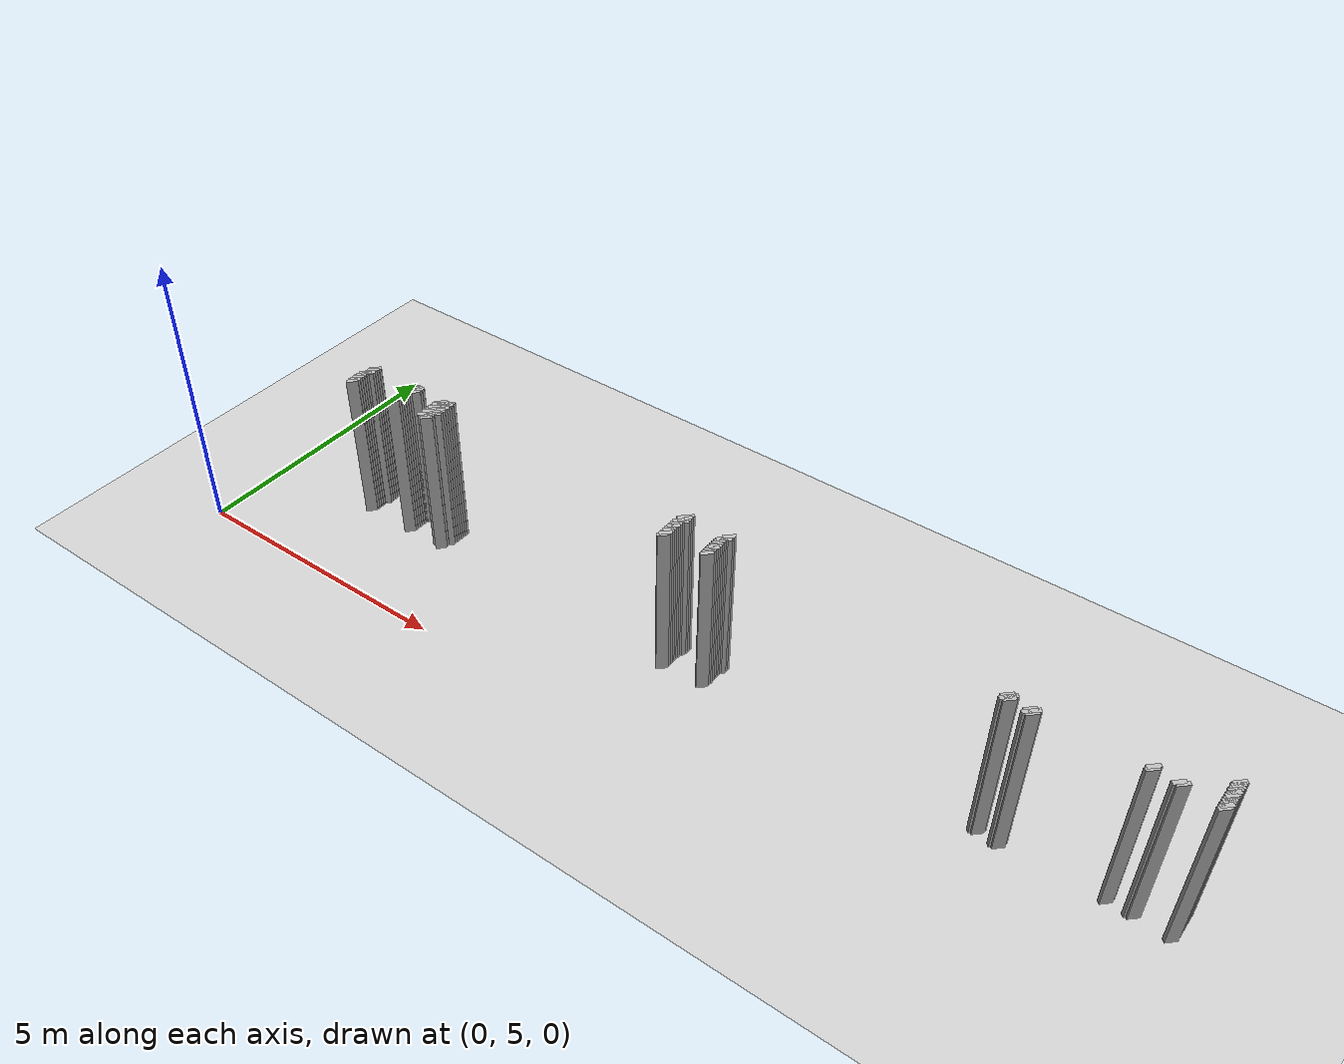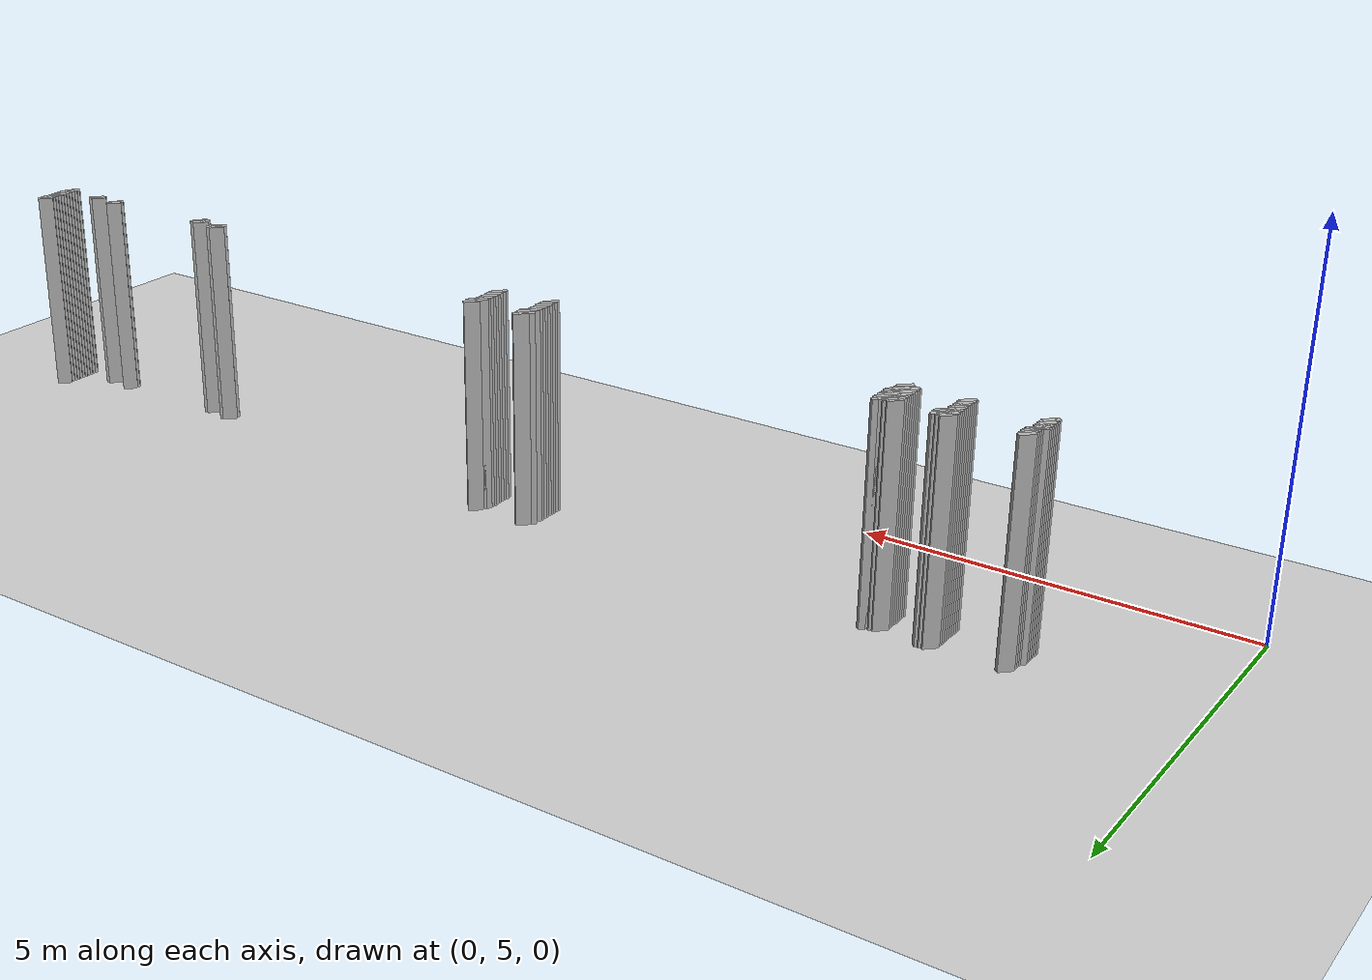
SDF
<sdf version="1.5">
 <world name="default">
  <include><uri>model://ground_plane</uri></include>
  <include><uri>model://sun</uri></include>
  <model name="grey_wall_2332">
   <static>1</static>
   <link name="link">
    <pose>8.65 7.25  1.4 0 0 -0.7853981633974483</pose>
    <collision name="collision">
     <geometry><box><size>0.07071067811865576 .2  2.8</size></box></geometry>
    </collision>
    <visual name="visual">
     <cast_shadows>0</cast_shadows>
     <geometry><box><size>0.07071067811865576 .2  2.8</size></box></geometry>
    </visual>
   </link>
  </model>
  <model name="grey_wall_2333">
   <static>1</static>
   <link name="link">
    <pose>9.4 7.25  1.4 0 0 -0.7853981633974483</pose>
    <collision name="collision">
     <geometry><box><size>0.07071067811865576 .2  2.8</size></box></geometry>
    </collision>
    <visual name="visual">
     <cast_shadows>0</cast_shadows>
     <geometry><box><size>0.07071067811865576 .2  2.8</size></box></geometry>
    </visual>
   </link>
  </model>
  <model name="grey_wall_2334">
   <static>1</static>
   <link name="link">
    <pose>17.05 7.25  1.4 0 0 -0.7853981633974838</pose>
    <collision name="collision">
     <geometry><box><size>0.07071067811865325 .2  2.8</size></box></geometry>
    </collision>
    <visual name="visual">
     <cast_shadows>0</cast_shadows>
     <geometry><box><size>0.07071067811865325 .2  2.8</size></box></geometry>
    </visual>
   </link>
  </model>
  <model name="grey_wall_2335">
   <static>1</static>
   <link name="link">
    <pose>2.15 7.2  1.4 0 0 -0.7853981633974572</pose>
    <collision name="collision">
     <geometry><box><size>0.07071067811865513 .2  2.8</size></box></geometry>
    </collision>
    <visual name="visual">
     <cast_shadows>0</cast_shadows>
     <geometry><box><size>0.07071067811865513 .2  2.8</size></box></geometry>
    </visual>
   </link>
  </model>
  <model name="grey_wall_2336">
   <static>1</static>
   <link name="link">
    <pose>3.0500000000000003 7.2  1.4 0 0 -0.7853981633974572</pose>
    <collision name="collision">
     <geometry><box><size>0.07071067811865513 .2  2.8</size></box></geometry>
    </collision>
    <visual name="visual">
     <cast_shadows>0</cast_shadows>
     <geometry><box><size>0.07071067811865513 .2  2.8</size></box></geometry>
    </visual>
   </link>
  </model>
  <model name="grey_wall_2337">
   <static>1</static>
   <link name="link">
    <pose>3.1 7.2  1.4 0 0 -0.7853981633974572</pose>
    <collision name="collision">
     <geometry><box><size>0.07071067811865513 .2  2.8</size></box></geometry>
    </collision>
    <visual name="visual">
     <cast_shadows>0</cast_shadows>
     <geometry><box><size>0.07071067811865513 .2  2.8</size></box></geometry>
    </visual>
   </link>
  </model>
  <model name="grey_wall_2338">
   <static>1</static>
   <link name="link">
    <pose>3.1500000000000004 7.2  1.4 0 0 -0.7853981633974572</pose>
    <collision name="collision">
     <geometry><box><size>0.07071067811865513 .2  2.8</size></box></geometry>
    </collision>
    <visual name="visual">
     <cast_shadows>0</cast_shadows>
     <geometry><box><size>0.07071067811865513 .2  2.8</size></box></geometry>
    </visual>
   </link>
  </model>
  <model name="grey_wall_2339">
   <static>1</static>
   <link name="link">
    <pose>3.85 7.2  1.4 0 0 -0.7853981633974572</pose>
    <collision name="collision">
     <geometry><box><size>0.07071067811865513 .2  2.8</size></box></geometry>
    </collision>
    <visual name="visual">
     <cast_shadows>0</cast_shadows>
     <geometry><box><size>0.07071067811865513 .2  2.8</size></box></geometry>
    </visual>
   </link>
  </model>
  <model name="grey_wall_2340">
   <static>1</static>
   <link name="link">
    <pose>8.6 7.2  1.4 0 0 -0.7853981633974483</pose>
    <collision name="collision">
     <geometry><box><size>0.07071067811865576 .2  2.8</size></box></geometry>
    </collision>
    <visual name="visual">
     <cast_shadows>0</cast_shadows>
     <geometry><box><size>0.07071067811865576 .2  2.8</size></box></geometry>
    </visual>
   </link>
  </model>
  <model name="grey_wall_2341">
   <static>1</static>
   <link name="link">
    <pose>8.65 7.2  1.4 0 0 -0.7853981633974483</pose>
    <collision name="collision">
     <geometry><box><size>0.07071067811865576 .2  2.8</size></box></geometry>
    </collision>
    <visual name="visual">
     <cast_shadows>0</cast_shadows>
     <geometry><box><size>0.07071067811865576 .2  2.8</size></box></geometry>
    </visual>
   </link>
  </model>
  <model name="grey_wall_2342">
   <static>1</static>
   <link name="link">
    <pose>9.4 7.2  1.4 0 0 -0.7853981633974483</pose>
    <collision name="collision">
     <geometry><box><size>0.07071067811865576 .2  2.8</size></box></geometry>
    </collision>
    <visual name="visual">
     <cast_shadows>0</cast_shadows>
     <geometry><box><size>0.07071067811865576 .2  2.8</size></box></geometry>
    </visual>
   </link>
  </model>
  <model name="grey_wall_2343">
   <static>1</static>
   <link name="link">
    <pose>17.05 7.2  1.4 0 0 -0.7853981633974838</pose>
    <collision name="collision">
     <geometry><box><size>0.07071067811865325 .2  2.8</size></box></geometry>
    </collision>
    <visual name="visual">
     <cast_shadows>0</cast_shadows>
     <geometry><box><size>0.07071067811865325 .2  2.8</size></box></geometry>
    </visual>
   </link>
  </model>
  <model name="grey_wall_2344">
   <static>1</static>
   <link name="link">
    <pose>2.15 7.15  1.4 0 0 -0.7853981633974572</pose>
    <collision name="collision">
     <geometry><box><size>0.07071067811865513 .2  2.8</size></box></geometry>
    </collision>
    <visual name="visual">
     <cast_shadows>0</cast_shadows>
     <geometry><box><size>0.07071067811865513 .2  2.8</size></box></geometry>
    </visual>
   </link>
  </model>
  <model name="grey_wall_2345">
   <static>1</static>
   <link name="link">
    <pose>3.0500000000000003 7.15  1.4 0 0 -0.7853981633974572</pose>
    <collision name="collision">
     <geometry><box><size>0.07071067811865513 .2  2.8</size></box></geometry>
    </collision>
    <visual name="visual">
     <cast_shadows>0</cast_shadows>
     <geometry><box><size>0.07071067811865513 .2  2.8</size></box></geometry>
    </visual>
   </link>
  </model>
  <model name="grey_wall_2346">
   <static>1</static>
   <link name="link">
    <pose>3.1500000000000004 7.15  1.4 0 0 -0.7853981633974572</pose>
    <collision name="collision">
     <geometry><box><size>0.07071067811865513 .2  2.8</size></box></geometry>
    </collision>
    <visual name="visual">
     <cast_shadows>0</cast_shadows>
     <geometry><box><size>0.07071067811865513 .2  2.8</size></box></geometry>
    </visual>
   </link>
  </model>
  <model name="grey_wall_2347">
   <static>1</static>
   <link name="link">
    <pose>3.7 7.15  1.4 0 0 -0.7853981633974572</pose>
    <collision name="collision">
     <geometry><box><size>0.07071067811865513 .2  2.8</size></box></geometry>
    </collision>
    <visual name="visual">
     <cast_shadows>0</cast_shadows>
     <geometry><box><size>0.07071067811865513 .2  2.8</size></box></geometry>
    </visual>
   </link>
  </model>
  <model name="grey_wall_2348">
   <static>1</static>
   <link name="link">
    <pose>3.75 7.15  1.4 0 0 -0.7853981633974572</pose>
    <collision name="collision">
     <geometry><box><size>0.07071067811865513 .2  2.8</size></box></geometry>
    </collision>
    <visual name="visual">
     <cast_shadows>0</cast_shadows>
     <geometry><box><size>0.07071067811865513 .2  2.8</size></box></geometry>
    </visual>
   </link>
  </model>
  <model name="grey_wall_2349">
   <static>1</static>
   <link name="link">
    <pose>3.8000000000000003 7.15  1.4 0 0 -0.7853981633974572</pose>
    <collision name="collision">
     <geometry><box><size>0.07071067811865513 .2  2.8</size></box></geometry>
    </collision>
    <visual name="visual">
     <cast_shadows>0</cast_shadows>
     <geometry><box><size>0.07071067811865513 .2  2.8</size></box></geometry>
    </visual>
   </link>
  </model>
  <model name="grey_wall_2350">
   <static>1</static>
   <link name="link">
    <pose>3.85 7.15  1.4 0 0 -0.7853981633974572</pose>
    <collision name="collision">
     <geometry><box><size>0.07071067811865513 .2  2.8</size></box></geometry>
    </collision>
    <visual name="visual">
     <cast_shadows>0</cast_shadows>
     <geometry><box><size>0.07071067811865513 .2  2.8</size></box></geometry>
    </visual>
   </link>
  </model>
  <model name="grey_wall_2351">
   <static>1</static>
   <link name="link">
    <pose>8.65 7.15  1.4 0 0 -0.7853981633974483</pose>
    <collision name="collision">
     <geometry><box><size>0.07071067811865576 .2  2.8</size></box></geometry>
    </collision>
    <visual name="visual">
     <cast_shadows>0</cast_shadows>
     <geometry><box><size>0.07071067811865576 .2  2.8</size></box></geometry>
    </visual>
   </link>
  </model>
  <model name="grey_wall_2352">
   <static>1</static>
   <link name="link">
    <pose>9.35 7.15  1.4 0 0 -0.7853981633974483</pose>
    <collision name="collision">
     <geometry><box><size>0.07071067811865576 .2  2.8</size></box></geometry>
    </collision>
    <visual name="visual">
     <cast_shadows>0</cast_shadows>
     <geometry><box><size>0.07071067811865576 .2  2.8</size></box></geometry>
    </visual>
   </link>
  </model>
  <model name="grey_wall_2353">
   <static>1</static>
   <link name="link">
    <pose>9.4 7.15  1.4 0 0 -0.7853981633974483</pose>
    <collision name="collision">
     <geometry><box><size>0.07071067811865576 .2  2.8</size></box></geometry>
    </collision>
    <visual name="visual">
     <cast_shadows>0</cast_shadows>
     <geometry><box><size>0.07071067811865576 .2  2.8</size></box></geometry>
    </visual>
   </link>
  </model>
  <model name="grey_wall_2354">
   <static>1</static>
   <link name="link">
    <pose>17.05 7.15  1.4 0 0 -0.7853981633974838</pose>
    <collision name="collision">
     <geometry><box><size>0.07071067811865325 .2  2.8</size></box></geometry>
    </collision>
    <visual name="visual">
     <cast_shadows>0</cast_shadows>
     <geometry><box><size>0.07071067811865325 .2  2.8</size></box></geometry>
    </visual>
   </link>
  </model>
  <model name="grey_wall_2355">
   <static>1</static>
   <link name="link">
    <pose>2.15 7.1000000000000005  1.4 0 0 -0.7853981633974572</pose>
    <collision name="collision">
     <geometry><box><size>0.07071067811865513 .2  2.8</size></box></geometry>
    </collision>
    <visual name="visual">
     <cast_shadows>0</cast_shadows>
     <geometry><box><size>0.07071067811865513 .2  2.8</size></box></geometry>
    </visual>
   </link>
  </model>
  <model name="grey_wall_2356">
   <static>1</static>
   <link name="link">
    <pose>3.0500000000000003 7.1000000000000005  1.4 0 0 -0.7853981633974572</pose>
    <collision name="collision">
     <geometry><box><size>0.07071067811865513 .2  2.8</size></box></geometry>
    </collision>
    <visual name="visual">
     <cast_shadows>0</cast_shadows>
     <geometry><box><size>0.07071067811865513 .2  2.8</size></box></geometry>
    </visual>
   </link>
  </model>
  <model name="grey_wall_2357">
   <static>1</static>
   <link name="link">
    <pose>3.1 7.1000000000000005  1.4 0 0 -0.7853981633974572</pose>
    <collision name="collision">
     <geometry><box><size>0.07071067811865513 .2  2.8</size></box></geometry>
    </collision>
    <visual name="visual">
     <cast_shadows>0</cast_shadows>
     <geometry><box><size>0.07071067811865513 .2  2.8</size></box></geometry>
    </visual>
   </link>
  </model>
  <model name="grey_wall_2358">
   <static>1</static>
   <link name="link">
    <pose>3.1500000000000004 7.1000000000000005  1.4 0 0 -0.7853981633974572</pose>
    <collision name="collision">
     <geometry><box><size>0.07071067811865513 .2  2.8</size></box></geometry>
    </collision>
    <visual name="visual">
     <cast_shadows>0</cast_shadows>
     <geometry><box><size>0.07071067811865513 .2  2.8</size></box></geometry>
    </visual>
   </link>
  </model>
  <model name="grey_wall_2359">
   <static>1</static>
   <link name="link">
    <pose>3.7 7.1000000000000005  1.4 0 0 -0.7853981633974572</pose>
    <collision name="collision">
     <geometry><box><size>0.07071067811865513 .2  2.8</size></box></geometry>
    </collision>
    <visual name="visual">
     <cast_shadows>0</cast_shadows>
     <geometry><box><size>0.07071067811865513 .2  2.8</size></box></geometry>
    </visual>
   </link>
  </model>
  <model name="grey_wall_2360">
   <static>1</static>
   <link name="link">
    <pose>3.8000000000000003 7.1000000000000005  1.4 0 0 -0.7853981633974572</pose>
    <collision name="collision">
     <geometry><box><size>0.07071067811865513 .2  2.8</size></box></geometry>
    </collision>
    <visual name="visual">
     <cast_shadows>0</cast_shadows>
     <geometry><box><size>0.07071067811865513 .2  2.8</size></box></geometry>
    </visual>
   </link>
  </model>
  <model name="grey_wall_2361">
   <static>1</static>
   <link name="link">
    <pose>3.85 7.1000000000000005  1.4 0 0 -0.7853981633974572</pose>
    <collision name="collision">
     <geometry><box><size>0.07071067811865513 .2  2.8</size></box></geometry>
    </collision>
    <visual name="visual">
     <cast_shadows>0</cast_shadows>
     <geometry><box><size>0.07071067811865513 .2  2.8</size></box></geometry>
    </visual>
   </link>
  </model>
  <model name="grey_wall_2362">
   <static>1</static>
   <link name="link">
    <pose>8.6 7.1000000000000005  1.4 0 0 -0.7853981633974483</pose>
    <collision name="collision">
     <geometry><box><size>0.07071067811865576 .2  2.8</size></box></geometry>
    </collision>
    <visual name="visual">
     <cast_shadows>0</cast_shadows>
     <geometry><box><size>0.07071067811865576 .2  2.8</size></box></geometry>
    </visual>
   </link>
  </model>
  <model name="grey_wall_2363">
   <static>1</static>
   <link name="link">
    <pose>8.65 7.1000000000000005  1.4 0 0 -0.7853981633974483</pose>
    <collision name="collision">
     <geometry><box><size>0.07071067811865576 .2  2.8</size></box></geometry>
    </collision>
    <visual name="visual">
     <cast_shadows>0</cast_shadows>
     <geometry><box><size>0.07071067811865576 .2  2.8</size></box></geometry>
    </visual>
   </link>
  </model>
  <model name="grey_wall_2364">
   <static>1</static>
   <link name="link">
    <pose>9.35 7.1000000000000005  1.4 0 0 -0.7853981633974483</pose>
    <collision name="collision">
     <geometry><box><size>0.07071067811865576 .2  2.8</size></box></geometry>
    </collision>
    <visual name="visual">
     <cast_shadows>0</cast_shadows>
     <geometry><box><size>0.07071067811865576 .2  2.8</size></box></geometry>
    </visual>
   </link>
  </model>
  <model name="grey_wall_2365">
   <static>1</static>
   <link name="link">
    <pose>17.05 7.1000000000000005  1.4 0 0 -0.7853981633974838</pose>
    <collision name="collision">
     <geometry><box><size>0.07071067811865325 .2  2.8</size></box></geometry>
    </collision>
    <visual name="visual">
     <cast_shadows>0</cast_shadows>
     <geometry><box><size>0.07071067811865325 .2  2.8</size></box></geometry>
    </visual>
   </link>
  </model>
  <model name="grey_wall_2366">
   <static>1</static>
   <link name="link">
    <pose>2.15 7.050000000000001  1.4 0 0 -0.7853981633974572</pose>
    <collision name="collision">
     <geometry><box><size>0.07071067811865513 .2  2.8</size></box></geometry>
    </collision>
    <visual name="visual">
     <cast_shadows>0</cast_shadows>
     <geometry><box><size>0.07071067811865513 .2  2.8</size></box></geometry>
    </visual>
   </link>
  </model>
  <model name="grey_wall_2367">
   <static>1</static>
   <link name="link">
    <pose>3.0500000000000003 7.050000000000001  1.4 0 0 -0.7853981633974572</pose>
    <collision name="collision">
     <geometry><box><size>0.07071067811865513 .2  2.8</size></box></geometry>
    </collision>
    <visual name="visual">
     <cast_shadows>0</cast_shadows>
     <geometry><box><size>0.07071067811865513 .2  2.8</size></box></geometry>
    </visual>
   </link>
  </model>
  <model name="grey_wall_2368">
   <static>1</static>
   <link name="link">
    <pose>3.7 7.050000000000001  1.4 0 0 -0.7853981633974572</pose>
    <collision name="collision">
     <geometry><box><size>0.07071067811865513 .2  2.8</size></box></geometry>
    </collision>
    <visual name="visual">
     <cast_shadows>0</cast_shadows>
     <geometry><box><size>0.07071067811865513 .2  2.8</size></box></geometry>
    </visual>
   </link>
  </model>
  <model name="grey_wall_2369">
   <static>1</static>
   <link name="link">
    <pose>3.8000000000000003 7.050000000000001  1.4 0 0 -0.7853981633974572</pose>
    <collision name="collision">
     <geometry><box><size>0.07071067811865513 .2  2.8</size></box></geometry>
    </collision>
    <visual name="visual">
     <cast_shadows>0</cast_shadows>
     <geometry><box><size>0.07071067811865513 .2  2.8</size></box></geometry>
    </visual>
   </link>
  </model>
  <model name="grey_wall_2370">
   <static>1</static>
   <link name="link">
    <pose>3.85 7.050000000000001  1.4 0 0 -0.7853981633974572</pose>
    <collision name="collision">
     <geometry><box><size>0.07071067811865513 .2  2.8</size></box></geometry>
    </collision>
    <visual name="visual">
     <cast_shadows>0</cast_shadows>
     <geometry><box><size>0.07071067811865513 .2  2.8</size></box></geometry>
    </visual>
   </link>
  </model>
  <model name="grey_wall_2371">
   <static>1</static>
   <link name="link">
    <pose>8.6 7.050000000000001  1.4 0 0 -0.7853981633974483</pose>
    <collision name="collision">
     <geometry><box><size>0.07071067811865576 .2  2.8</size></box></geometry>
    </collision>
    <visual name="visual">
     <cast_shadows>0</cast_shadows>
     <geometry><box><size>0.07071067811865576 .2  2.8</size></box></geometry>
    </visual>
   </link>
  </model>
  <model name="grey_wall_2372">
   <static>1</static>
   <link name="link">
    <pose>9.35 7.050000000000001  1.4 0 0 -0.7853981633974483</pose>
    <collision name="collision">
     <geometry><box><size>0.07071067811865576 .2  2.8</size></box></geometry>
    </collision>
    <visual name="visual">
     <cast_shadows>0</cast_shadows>
     <geometry><box><size>0.07071067811865576 .2  2.8</size></box></geometry>
    </visual>
   </link>
  </model>
  <model name="grey_wall_2373">
   <static>1</static>
   <link name="link">
    <pose>17.05 7.050000000000001  1.4 0 0 -0.7853981633974838</pose>
    <collision name="collision">
     <geometry><box><size>0.07071067811865325 .2  2.8</size></box></geometry>
    </collision>
    <visual name="visual">
     <cast_shadows>0</cast_shadows>
     <geometry><box><size>0.07071067811865325 .2  2.8</size></box></geometry>
    </visual>
   </link>
  </model>
  <model name="grey_wall_2374">
   <static>1</static>
   <link name="link">
    <pose>2.1 7.0  1.4 0 0 -0.7853981633974572</pose>
    <collision name="collision">
     <geometry><box><size>0.07071067811865513 .2  2.8</size></box></geometry>
    </collision>
    <visual name="visual">
     <cast_shadows>0</cast_shadows>
     <geometry><box><size>0.07071067811865513 .2  2.8</size></box></geometry>
    </visual>
   </link>
  </model>
  <model name="grey_wall_2375">
   <static>1</static>
   <link name="link">
    <pose>2.15 7.0  1.4 0 0 -0.7853981633974572</pose>
    <collision name="collision">
     <geometry><box><size>0.07071067811865513 .2  2.8</size></box></geometry>
    </collision>
    <visual name="visual">
     <cast_shadows>0</cast_shadows>
     <geometry><box><size>0.07071067811865513 .2  2.8</size></box></geometry>
    </visual>
   </link>
  </model>
  <model name="grey_wall_2376">
   <static>1</static>
   <link name="link">
    <pose>3.0500000000000003 7.0  1.4 0 0 -0.7853981633974572</pose>
    <collision name="collision">
     <geometry><box><size>0.07071067811865513 .2  2.8</size></box></geometry>
    </collision>
    <visual name="visual">
     <cast_shadows>0</cast_shadows>
     <geometry><box><size>0.07071067811865513 .2  2.8</size></box></geometry>
    </visual>
   </link>
  </model>
  <model name="grey_wall_2377">
   <static>1</static>
   <link name="link">
    <pose>3.7 7.0  1.4 0 0 -0.7853981633974572</pose>
    <collision name="collision">
     <geometry><box><size>0.07071067811865513 .2  2.8</size></box></geometry>
    </collision>
    <visual name="visual">
     <cast_shadows>0</cast_shadows>
     <geometry><box><size>0.07071067811865513 .2  2.8</size></box></geometry>
    </visual>
   </link>
  </model>
  <model name="grey_wall_2378">
   <static>1</static>
   <link name="link">
    <pose>3.8000000000000003 7.0  1.4 0 0 -0.7853981633974572</pose>
    <collision name="collision">
     <geometry><box><size>0.07071067811865513 .2  2.8</size></box></geometry>
    </collision>
    <visual name="visual">
     <cast_shadows>0</cast_shadows>
     <geometry><box><size>0.07071067811865513 .2  2.8</size></box></geometry>
    </visual>
   </link>
  </model>
  <model name="grey_wall_2379">
   <static>1</static>
   <link name="link">
    <pose>3.85 7.0  1.4 0 0 -0.7853981633974572</pose>
    <collision name="collision">
     <geometry><box><size>0.07071067811865513 .2  2.8</size></box></geometry>
    </collision>
    <visual name="visual">
     <cast_shadows>0</cast_shadows>
     <geometry><box><size>0.07071067811865513 .2  2.8</size></box></geometry>
    </visual>
   </link>
  </model>
  <model name="grey_wall_2380">
   <static>1</static>
   <link name="link">
    <pose>8.6 7.0  1.4 0 0 -0.7853981633974483</pose>
    <collision name="collision">
     <geometry><box><size>0.07071067811865576 .2  2.8</size></box></geometry>
    </collision>
    <visual name="visual">
     <cast_shadows>0</cast_shadows>
     <geometry><box><size>0.07071067811865576 .2  2.8</size></box></geometry>
    </visual>
   </link>
  </model>
  <model name="grey_wall_2381">
   <static>1</static>
   <link name="link">
    <pose>9.35 7.0  1.4 0 0 -0.7853981633974483</pose>
    <collision name="collision">
     <geometry><box><size>0.07071067811865576 .2  2.8</size></box></geometry>
    </collision>
    <visual name="visual">
     <cast_shadows>0</cast_shadows>
     <geometry><box><size>0.07071067811865576 .2  2.8</size></box></geometry>
    </visual>
   </link>
  </model>
  <model name="grey_wall_2382">
   <static>1</static>
   <link name="link">
    <pose>17.05 7.0  1.4 0 0 -0.7853981633974838</pose>
    <collision name="collision">
     <geometry><box><size>0.07071067811865325 .2  2.8</size></box></geometry>
    </collision>
    <visual name="visual">
     <cast_shadows>0</cast_shadows>
     <geometry><box><size>0.07071067811865325 .2  2.8</size></box></geometry>
    </visual>
   </link>
  </model>
  <model name="grey_wall_2383">
   <static>1</static>
   <link name="link">
    <pose>2.1 6.95  1.4 0 0 -0.7853981633974572</pose>
    <collision name="collision">
     <geometry><box><size>0.07071067811865513 .2  2.8</size></box></geometry>
    </collision>
    <visual name="visual">
     <cast_shadows>0</cast_shadows>
     <geometry><box><size>0.07071067811865513 .2  2.8</size></box></geometry>
    </visual>
   </link>
  </model>
  <model name="grey_wall_2384">
   <static>1</static>
   <link name="link">
    <pose>3.0500000000000003 6.95  1.4 0 0 -0.7853981633974572</pose>
    <collision name="collision">
     <geometry><box><size>0.07071067811865513 .2  2.8</size></box></geometry>
    </collision>
    <visual name="visual">
     <cast_shadows>0</cast_shadows>
     <geometry><box><size>0.07071067811865513 .2  2.8</size></box></geometry>
    </visual>
   </link>
  </model>
  <model name="grey_wall_2385">
   <static>1</static>
   <link name="link">
    <pose>3.7 6.95  1.4 0 0 -0.7853981633974572</pose>
    <collision name="collision">
     <geometry><box><size>0.07071067811865513 .2  2.8</size></box></geometry>
    </collision>
    <visual name="visual">
     <cast_shadows>0</cast_shadows>
     <geometry><box><size>0.07071067811865513 .2  2.8</size></box></geometry>
    </visual>
   </link>
  </model>
  <model name="grey_wall_2386">
   <static>1</static>
   <link name="link">
    <pose>3.8000000000000003 6.95  1.4 0 0 -0.7853981633974572</pose>
    <collision name="collision">
     <geometry><box><size>0.07071067811865513 .2  2.8</size></box></geometry>
    </collision>
    <visual name="visual">
     <cast_shadows>0</cast_shadows>
     <geometry><box><size>0.07071067811865513 .2  2.8</size></box></geometry>
    </visual>
   </link>
  </model>
  <model name="grey_wall_2387">
   <static>1</static>
   <link name="link">
    <pose>3.85 6.95  1.4 0 0 -0.7853981633974572</pose>
    <collision name="collision">
     <geometry><box><size>0.07071067811865513 .2  2.8</size></box></geometry>
    </collision>
    <visual name="visual">
     <cast_shadows>0</cast_shadows>
     <geometry><box><size>0.07071067811865513 .2  2.8</size></box></geometry>
    </visual>
   </link>
  </model>
  <model name="grey_wall_2388">
   <static>1</static>
   <link name="link">
    <pose>8.6 6.95  1.4 0 0 -0.7853981633974483</pose>
    <collision name="collision">
     <geometry><box><size>0.07071067811865576 .2  2.8</size></box></geometry>
    </collision>
    <visual name="visual">
     <cast_shadows>0</cast_shadows>
     <geometry><box><size>0.07071067811865576 .2  2.8</size></box></geometry>
    </visual>
   </link>
  </model>
  <model name="grey_wall_2389">
   <static>1</static>
   <link name="link">
    <pose>9.35 6.95  1.4 0 0 -0.7853981633974483</pose>
    <collision name="collision">
     <geometry><box><size>0.07071067811865576 .2  2.8</size></box></geometry>
    </collision>
    <visual name="visual">
     <cast_shadows>0</cast_shadows>
     <geometry><box><size>0.07071067811865576 .2  2.8</size></box></geometry>
    </visual>
   </link>
  </model>
  <model name="grey_wall_2390">
   <static>1</static>
   <link name="link">
    <pose>17.05 6.95  1.4 0 0 -0.7853981633974838</pose>
    <collision name="collision">
     <geometry><box><size>0.07071067811865325 .2  2.8</size></box></geometry>
    </collision>
    <visual name="visual">
     <cast_shadows>0</cast_shadows>
     <geometry><box><size>0.07071067811865325 .2  2.8</size></box></geometry>
    </visual>
   </link>
  </model>
  <model name="grey_wall_2391">
   <static>1</static>
   <link name="link">
    <pose>2.1 6.9  1.4 0 0 -0.7853981633974572</pose>
    <collision name="collision">
     <geometry><box><size>0.07071067811865513 .2  2.8</size></box></geometry>
    </collision>
    <visual name="visual">
     <cast_shadows>0</cast_shadows>
     <geometry><box><size>0.07071067811865513 .2  2.8</size></box></geometry>
    </visual>
   </link>
  </model>
  <model name="grey_wall_2392">
   <static>1</static>
   <link name="link">
    <pose>3.0500000000000003 6.9  1.4 0 0 -0.7853981633974572</pose>
    <collision name="collision">
     <geometry><box><size>0.07071067811865513 .2  2.8</size></box></geometry>
    </collision>
    <visual name="visual">
     <cast_shadows>0</cast_shadows>
     <geometry><box><size>0.07071067811865513 .2  2.8</size></box></geometry>
    </visual>
   </link>
  </model>
  <model name="grey_wall_2393">
   <static>1</static>
   <link name="link">
    <pose>3.7 6.9  1.4 0 0 -0.7853981633974572</pose>
    <collision name="collision">
     <geometry><box><size>0.07071067811865513 .2  2.8</size></box></geometry>
    </collision>
    <visual name="visual">
     <cast_shadows>0</cast_shadows>
     <geometry><box><size>0.07071067811865513 .2  2.8</size></box></geometry>
    </visual>
   </link>
  </model>
  <model name="grey_wall_2394">
   <static>1</static>
   <link name="link">
    <pose>3.8000000000000003 6.9  1.4 0 0 -0.7853981633974572</pose>
    <collision name="collision">
     <geometry><box><size>0.07071067811865513 .2  2.8</size></box></geometry>
    </collision>
    <visual name="visual">
     <cast_shadows>0</cast_shadows>
     <geometry><box><size>0.07071067811865513 .2  2.8</size></box></geometry>
    </visual>
   </link>
  </model>
  <model name="grey_wall_2395">
   <static>1</static>
   <link name="link">
    <pose>3.85 6.9  1.4 0 0 -0.7853981633974572</pose>
    <collision name="collision">
     <geometry><box><size>0.07071067811865513 .2  2.8</size></box></geometry>
    </collision>
    <visual name="visual">
     <cast_shadows>0</cast_shadows>
     <geometry><box><size>0.07071067811865513 .2  2.8</size></box></geometry>
    </visual>
   </link>
  </model>
  <model name="grey_wall_2396">
   <static>1</static>
   <link name="link">
    <pose>8.6 6.9  1.4 0 0 -0.7853981633974483</pose>
    <collision name="collision">
     <geometry><box><size>0.07071067811865576 .2  2.8</size></box></geometry>
    </collision>
    <visual name="visual">
     <cast_shadows>0</cast_shadows>
     <geometry><box><size>0.07071067811865576 .2  2.8</size></box></geometry>
    </visual>
   </link>
  </model>
  <model name="grey_wall_2397">
   <static>1</static>
   <link name="link">
    <pose>9.35 6.9  1.4 0 0 -0.7853981633974483</pose>
    <collision name="collision">
     <geometry><box><size>0.07071067811865576 .2  2.8</size></box></geometry>
    </collision>
    <visual name="visual">
     <cast_shadows>0</cast_shadows>
     <geometry><box><size>0.07071067811865576 .2  2.8</size></box></geometry>
    </visual>
   </link>
  </model>
  <model name="grey_wall_2398">
   <static>1</static>
   <link name="link">
    <pose>17.05 6.9  1.4 0 0 -0.7853981633974838</pose>
    <collision name="collision">
     <geometry><box><size>0.07071067811865325 .2  2.8</size></box></geometry>
    </collision>
    <visual name="visual">
     <cast_shadows>0</cast_shadows>
     <geometry><box><size>0.07071067811865325 .2  2.8</size></box></geometry>
    </visual>
   </link>
  </model>
  <model name="grey_wall_2399">
   <static>1</static>
   <link name="link">
    <pose>2.1 6.8500000000000005  1.4 0 0 -0.7853981633974572</pose>
    <collision name="collision">
     <geometry><box><size>0.07071067811865513 .2  2.8</size></box></geometry>
    </collision>
    <visual name="visual">
     <cast_shadows>0</cast_shadows>
     <geometry><box><size>0.07071067811865513 .2  2.8</size></box></geometry>
    </visual>
   </link>
  </model>
  <model name="grey_wall_2400">
   <static>1</static>
   <link name="link">
    <pose>3.0500000000000003 6.8500000000000005  1.4 0 0 -0.7853981633974572</pose>
    <collision name="collision">
     <geometry><box><size>0.07071067811865513 .2  2.8</size></box></geometry>
    </collision>
    <visual name="visual">
     <cast_shadows>0</cast_shadows>
     <geometry><box><size>0.07071067811865513 .2  2.8</size></box></geometry>
    </visual>
   </link>
  </model>
  <model name="grey_wall_2401">
   <static>1</static>
   <link name="link">
    <pose>3.7 6.8500000000000005  1.4 0 0 -0.7853981633974572</pose>
    <collision name="collision">
     <geometry><box><size>0.07071067811865513 .2  2.8</size></box></geometry>
    </collision>
    <visual name="visual">
     <cast_shadows>0</cast_shadows>
     <geometry><box><size>0.07071067811865513 .2  2.8</size></box></geometry>
    </visual>
   </link>
  </model>
  <model name="grey_wall_2402">
   <static>1</static>
   <link name="link">
    <pose>3.8000000000000003 6.8500000000000005  1.4 0 0 -0.7853981633974572</pose>
    <collision name="collision">
     <geometry><box><size>0.07071067811865513 .2  2.8</size></box></geometry>
    </collision>
    <visual name="visual">
     <cast_shadows>0</cast_shadows>
     <geometry><box><size>0.07071067811865513 .2  2.8</size></box></geometry>
    </visual>
   </link>
  </model>
  <model name="grey_wall_2403">
   <static>1</static>
   <link name="link">
    <pose>3.85 6.8500000000000005  1.4 0 0 -0.7853981633974572</pose>
    <collision name="collision">
     <geometry><box><size>0.07071067811865513 .2  2.8</size></box></geometry>
    </collision>
    <visual name="visual">
     <cast_shadows>0</cast_shadows>
     <geometry><box><size>0.07071067811865513 .2  2.8</size></box></geometry>
    </visual>
   </link>
  </model>
  <model name="grey_wall_2404">
   <static>1</static>
   <link name="link">
    <pose>8.6 6.8500000000000005  1.4 0 0 -0.7853981633974483</pose>
    <collision name="collision">
     <geometry><box><size>0.07071067811865576 .2  2.8</size></box></geometry>
    </collision>
    <visual name="visual">
     <cast_shadows>0</cast_shadows>
     <geometry><box><size>0.07071067811865576 .2  2.8</size></box></geometry>
    </visual>
   </link>
  </model>
  <model name="grey_wall_2405">
   <static>1</static>
   <link name="link">
    <pose>9.35 6.8500000000000005  1.4 0 0 -0.7853981633974483</pose>
    <collision name="collision">
     <geometry><box><size>0.07071067811865576 .2  2.8</size></box></geometry>
    </collision>
    <visual name="visual">
     <cast_shadows>0</cast_shadows>
     <geometry><box><size>0.07071067811865576 .2  2.8</size></box></geometry>
    </visual>
   </link>
  </model>
  <model name="grey_wall_2406">
   <static>1</static>
   <link name="link">
    <pose>14.100000000000001 6.8500000000000005  1.4 0 0 -0.7853981633974483</pose>
    <collision name="collision">
     <geometry><box><size>0.07071067811865576 .2  2.8</size></box></geometry>
    </collision>
    <visual name="visual">
     <cast_shadows>0</cast_shadows>
     <geometry><box><size>0.07071067811865576 .2  2.8</size></box></geometry>
    </visual>
   </link>
  </model>
  <model name="grey_wall_2407">
   <static>1</static>
   <link name="link">
    <pose>14.15 6.8500000000000005  1.4 0 0 -0.7853981633974483</pose>
    <collision name="collision">
     <geometry><box><size>0.07071067811865576 .2  2.8</size></box></geometry>
    </collision>
    <visual name="visual">
     <cast_shadows>0</cast_shadows>
     <geometry><box><size>0.07071067811865576 .2  2.8</size></box></geometry>
    </visual>
   </link>
  </model>
  <model name="grey_wall_2408">
   <static>1</static>
   <link name="link">
    <pose>16.1 6.8500000000000005  1.4 0 0 -0.7853981633974838</pose>
    <collision name="collision">
     <geometry><box><size>0.07071067811865325 .2  2.8</size></box></geometry>
    </collision>
    <visual name="visual">
     <cast_shadows>0</cast_shadows>
     <geometry><box><size>0.07071067811865325 .2  2.8</size></box></geometry>
    </visual>
   </link>
  </model>
  <model name="grey_wall_2409">
   <static>1</static>
   <link name="link">
    <pose>17.05 6.8500000000000005  1.4 0 0 -0.7853981633974838</pose>
    <collision name="collision">
     <geometry><box><size>0.07071067811865325 .2  2.8</size></box></geometry>
    </collision>
    <visual name="visual">
     <cast_shadows>0</cast_shadows>
     <geometry><box><size>0.07071067811865325 .2  2.8</size></box></geometry>
    </visual>
   </link>
  </model>
  <model name="grey_wall_2410">
   <static>1</static>
   <link name="link">
    <pose>2.1 6.800000000000001  1.4 0 0 -0.7853981633974572</pose>
    <collision name="collision">
     <geometry><box><size>0.07071067811865513 .2  2.8</size></box></geometry>
    </collision>
    <visual name="visual">
     <cast_shadows>0</cast_shadows>
     <geometry><box><size>0.07071067811865513 .2  2.8</size></box></geometry>
    </visual>
   </link>
  </model>
  <model name="grey_wall_2411">
   <static>1</static>
   <link name="link">
    <pose>3.0500000000000003 6.800000000000001  1.4 0 0 -0.7853981633974572</pose>
    <collision name="collision">
     <geometry><box><size>0.07071067811865513 .2  2.8</size></box></geometry>
    </collision>
    <visual name="visual">
     <cast_shadows>0</cast_shadows>
     <geometry><box><size>0.07071067811865513 .2  2.8</size></box></geometry>
    </visual>
   </link>
  </model>
  <model name="grey_wall_2412">
   <static>1</static>
   <link name="link">
    <pose>3.7 6.800000000000001  1.4 0 0 -0.7853981633974572</pose>
    <collision name="collision">
     <geometry><box><size>0.07071067811865513 .2  2.8</size></box></geometry>
    </collision>
    <visual name="visual">
     <cast_shadows>0</cast_shadows>
     <geometry><box><size>0.07071067811865513 .2  2.8</size></box></geometry>
    </visual>
   </link>
  </model>
  <model name="grey_wall_2413">
   <static>1</static>
   <link name="link">
    <pose>3.8000000000000003 6.800000000000001  1.4 0 0 -0.7853981633974572</pose>
    <collision name="collision">
     <geometry><box><size>0.07071067811865513 .2  2.8</size></box></geometry>
    </collision>
    <visual name="visual">
     <cast_shadows>0</cast_shadows>
     <geometry><box><size>0.07071067811865513 .2  2.8</size></box></geometry>
    </visual>
   </link>
  </model>
  <model name="grey_wall_2414">
   <static>1</static>
   <link name="link">
    <pose>8.6 6.800000000000001  1.4 0 0 -0.7853981633974483</pose>
    <collision name="collision">
     <geometry><box><size>0.07071067811865576 .2  2.8</size></box></geometry>
    </collision>
    <visual name="visual">
     <cast_shadows>0</cast_shadows>
     <geometry><box><size>0.07071067811865576 .2  2.8</size></box></geometry>
    </visual>
   </link>
  </model>
  <model name="grey_wall_2415">
   <static>1</static>
   <link name="link">
    <pose>9.35 6.800000000000001  1.4 0 0 -0.7853981633974483</pose>
    <collision name="collision">
     <geometry><box><size>0.07071067811865576 .2  2.8</size></box></geometry>
    </collision>
    <visual name="visual">
     <cast_shadows>0</cast_shadows>
     <geometry><box><size>0.07071067811865576 .2  2.8</size></box></geometry>
    </visual>
   </link>
  </model>
  <model name="grey_wall_2416">
   <static>1</static>
   <link name="link">
    <pose>14.100000000000001 6.800000000000001  1.4 0 0 -0.7853981633974483</pose>
    <collision name="collision">
     <geometry><box><size>0.07071067811865576 .2  2.8</size></box></geometry>
    </collision>
    <visual name="visual">
     <cast_shadows>0</cast_shadows>
     <geometry><box><size>0.07071067811865576 .2  2.8</size></box></geometry>
    </visual>
   </link>
  </model>
  <model name="grey_wall_2417">
   <static>1</static>
   <link name="link">
    <pose>14.15 6.800000000000001  1.4 0 0 -0.7853981633974483</pose>
    <collision name="collision">
     <geometry><box><size>0.07071067811865576 .2  2.8</size></box></geometry>
    </collision>
    <visual name="visual">
     <cast_shadows>0</cast_shadows>
     <geometry><box><size>0.07071067811865576 .2  2.8</size></box></geometry>
    </visual>
   </link>
  </model>
  <model name="grey_wall_2418">
   <static>1</static>
   <link name="link">
    <pose>14.450000000000001 6.800000000000001  1.4 0 0 -0.7853981633974483</pose>
    <collision name="collision">
     <geometry><box><size>0.07071067811865576 .2  2.8</size></box></geometry>
    </collision>
    <visual name="visual">
     <cast_shadows>0</cast_shadows>
     <geometry><box><size>0.07071067811865576 .2  2.8</size></box></geometry>
    </visual>
   </link>
  </model>
  <model name="grey_wall_2419">
   <static>1</static>
   <link name="link">
    <pose>14.5 6.800000000000001  1.4 0 0 -0.7853981633974483</pose>
    <collision name="collision">
     <geometry><box><size>0.07071067811865576 .2  2.8</size></box></geometry>
    </collision>
    <visual name="visual">
     <cast_shadows>0</cast_shadows>
     <geometry><box><size>0.07071067811865576 .2  2.8</size></box></geometry>
    </visual>
   </link>
  </model>
  <model name="grey_wall_2420">
   <static>1</static>
   <link name="link">
    <pose>16.1 6.800000000000001  1.4 0 0 -0.7853981633974838</pose>
    <collision name="collision">
     <geometry><box><size>0.07071067811865325 .2  2.8</size></box></geometry>
    </collision>
    <visual name="visual">
     <cast_shadows>0</cast_shadows>
     <geometry><box><size>0.07071067811865325 .2  2.8</size></box></geometry>
    </visual>
   </link>
  </model>
  <model name="grey_wall_2421">
   <static>1</static>
   <link name="link">
    <pose>16.45 6.800000000000001  1.4 0 0 -0.7853981633974838</pose>
    <collision name="collision">
     <geometry><box><size>0.07071067811865325 .2  2.8</size></box></geometry>
    </collision>
    <visual name="visual">
     <cast_shadows>0</cast_shadows>
     <geometry><box><size>0.07071067811865325 .2  2.8</size></box></geometry>
    </visual>
   </link>
  </model>
  <model name="grey_wall_2422">
   <static>1</static>
   <link name="link">
    <pose>16.5 6.800000000000001  1.4 0 0 -0.7853981633974838</pose>
    <collision name="collision">
     <geometry><box><size>0.07071067811865325 .2  2.8</size></box></geometry>
    </collision>
    <visual name="visual">
     <cast_shadows>0</cast_shadows>
     <geometry><box><size>0.07071067811865325 .2  2.8</size></box></geometry>
    </visual>
   </link>
  </model>
  <model name="grey_wall_2423">
   <static>1</static>
   <link name="link">
    <pose>17.05 6.800000000000001  1.4 0 0 -0.7853981633974838</pose>
    <collision name="collision">
     <geometry><box><size>0.07071067811865325 .2  2.8</size></box></geometry>
    </collision>
    <visual name="visual">
     <cast_shadows>0</cast_shadows>
     <geometry><box><size>0.07071067811865325 .2  2.8</size></box></geometry>
    </visual>
   </link>
  </model>
  <model name="grey_wall_2424">
   <static>1</static>
   <link name="link">
    <pose>2.1 6.75  1.4 0 0 -0.7853981633974572</pose>
    <collision name="collision">
     <geometry><box><size>0.07071067811865513 .2  2.8</size></box></geometry>
    </collision>
    <visual name="visual">
     <cast_shadows>0</cast_shadows>
     <geometry><box><size>0.07071067811865513 .2  2.8</size></box></geometry>
    </visual>
   </link>
  </model>
  <model name="grey_wall_2425">
   <static>1</static>
   <link name="link">
    <pose>3.0500000000000003 6.75  1.4 0 0 -0.7853981633974572</pose>
    <collision name="collision">
     <geometry><box><size>0.07071067811865513 .2  2.8</size></box></geometry>
    </collision>
    <visual name="visual">
     <cast_shadows>0</cast_shadows>
     <geometry><box><size>0.07071067811865513 .2  2.8</size></box></geometry>
    </visual>
   </link>
  </model>
  <model name="grey_wall_2426">
   <static>1</static>
   <link name="link">
    <pose>3.7 6.75  1.4 0 0 -0.7853981633974572</pose>
    <collision name="collision">
     <geometry><box><size>0.07071067811865513 .2  2.8</size></box></geometry>
    </collision>
    <visual name="visual">
     <cast_shadows>0</cast_shadows>
     <geometry><box><size>0.07071067811865513 .2  2.8</size></box></geometry>
    </visual>
   </link>
  </model>
  <model name="grey_wall_2427">
   <static>1</static>
   <link name="link">
    <pose>3.75 6.75  1.4 0 0 -0.7853981633974572</pose>
    <collision name="collision">
     <geometry><box><size>0.07071067811865513 .2  2.8</size></box></geometry>
    </collision>
    <visual name="visual">
     <cast_shadows>0</cast_shadows>
     <geometry><box><size>0.07071067811865513 .2  2.8</size></box></geometry>
    </visual>
   </link>
  </model>
  <model name="grey_wall_2428">
   <static>1</static>
   <link name="link">
    <pose>3.8000000000000003 6.75  1.4 0 0 -0.7853981633974572</pose>
    <collision name="collision">
     <geometry><box><size>0.07071067811865513 .2  2.8</size></box></geometry>
    </collision>
    <visual name="visual">
     <cast_shadows>0</cast_shadows>
     <geometry><box><size>0.07071067811865513 .2  2.8</size></box></geometry>
    </visual>
   </link>
  </model>
  <model name="grey_wall_2429">
   <static>1</static>
   <link name="link">
    <pose>8.6 6.75  1.4 0 0 -0.7853981633974483</pose>
    <collision name="collision">
     <geometry><box><size>0.07071067811865576 .2  2.8</size></box></geometry>
    </collision>
    <visual name="visual">
     <cast_shadows>0</cast_shadows>
     <geometry><box><size>0.07071067811865576 .2  2.8</size></box></geometry>
    </visual>
   </link>
  </model>
  <model name="grey_wall_2430">
   <static>1</static>
   <link name="link">
    <pose>9.35 6.75  1.4 0 0 -0.7853981633974483</pose>
    <collision name="collision">
     <geometry><box><size>0.07071067811865576 .2  2.8</size></box></geometry>
    </collision>
    <visual name="visual">
     <cast_shadows>0</cast_shadows>
     <geometry><box><size>0.07071067811865576 .2  2.8</size></box></geometry>
    </visual>
   </link>
  </model>
  <model name="grey_wall_2431">
   <static>1</static>
   <link name="link">
    <pose>14.450000000000001 6.75  1.4 0 0 -0.7853981633974483</pose>
    <collision name="collision">
     <geometry><box><size>0.07071067811865576 .2  2.8</size></box></geometry>
    </collision>
    <visual name="visual">
     <cast_shadows>0</cast_shadows>
     <geometry><box><size>0.07071067811865576 .2  2.8</size></box></geometry>
    </visual>
   </link>
  </model>
  <model name="grey_wall_2432">
   <static>1</static>
   <link name="link">
    <pose>14.5 6.75  1.4 0 0 -0.7853981633974483</pose>
    <collision name="collision">
     <geometry><box><size>0.07071067811865576 .2  2.8</size></box></geometry>
    </collision>
    <visual name="visual">
     <cast_shadows>0</cast_shadows>
     <geometry><box><size>0.07071067811865576 .2  2.8</size></box></geometry>
    </visual>
   </link>
  </model>
  <model name="grey_wall_2433">
   <static>1</static>
   <link name="link">
    <pose>17.05 6.75  1.4 0 0 -0.7853981633974838</pose>
    <collision name="collision">
     <geometry><box><size>0.07071067811865325 .2  2.8</size></box></geometry>
    </collision>
    <visual name="visual">
     <cast_shadows>0</cast_shadows>
     <geometry><box><size>0.07071067811865325 .2  2.8</size></box></geometry>
    </visual>
   </link>
  </model>
  <model name="grey_wall_2434">
   <static>1</static>
   <link name="link">
    <pose>2.1 6.7  1.4 0 0 -0.7853981633974572</pose>
    <collision name="collision">
     <geometry><box><size>0.07071067811865513 .2  2.8</size></box></geometry>
    </collision>
    <visual name="visual">
     <cast_shadows>0</cast_shadows>
     <geometry><box><size>0.07071067811865513 .2  2.8</size></box></geometry>
    </visual>
   </link>
  </model>
  <model name="grey_wall_2435">
   <static>1</static>
   <link name="link">
    <pose>3.0500000000000003 6.7  1.4 0 0 -0.7853981633974572</pose>
    <collision name="collision">
     <geometry><box><size>0.07071067811865513 .2  2.8</size></box></geometry>
    </collision>
    <visual name="visual">
     <cast_shadows>0</cast_shadows>
     <geometry><box><size>0.07071067811865513 .2  2.8</size></box></geometry>
    </visual>
   </link>
  </model>
  <model name="grey_wall_2436">
   <static>1</static>
   <link name="link">
    <pose>3.8000000000000003 6.7  1.4 0 0 -0.7853981633974572</pose>
    <collision name="collision">
     <geometry><box><size>0.07071067811865513 .2  2.8</size></box></geometry>
    </collision>
    <visual name="visual">
     <cast_shadows>0</cast_shadows>
     <geometry><box><size>0.07071067811865513 .2  2.8</size></box></geometry>
    </visual>
   </link>
  </model>
  <model name="grey_wall_2437">
   <static>1</static>
   <link name="link">
    <pose>8.6 6.7  1.4 0 0 -0.7853981633974483</pose>
    <collision name="collision">
     <geometry><box><size>0.07071067811865576 .2  2.8</size></box></geometry>
    </collision>
    <visual name="visual">
     <cast_shadows>0</cast_shadows>
     <geometry><box><size>0.07071067811865576 .2  2.8</size></box></geometry>
    </visual>
   </link>
  </model>
 </world>
</sdf>
